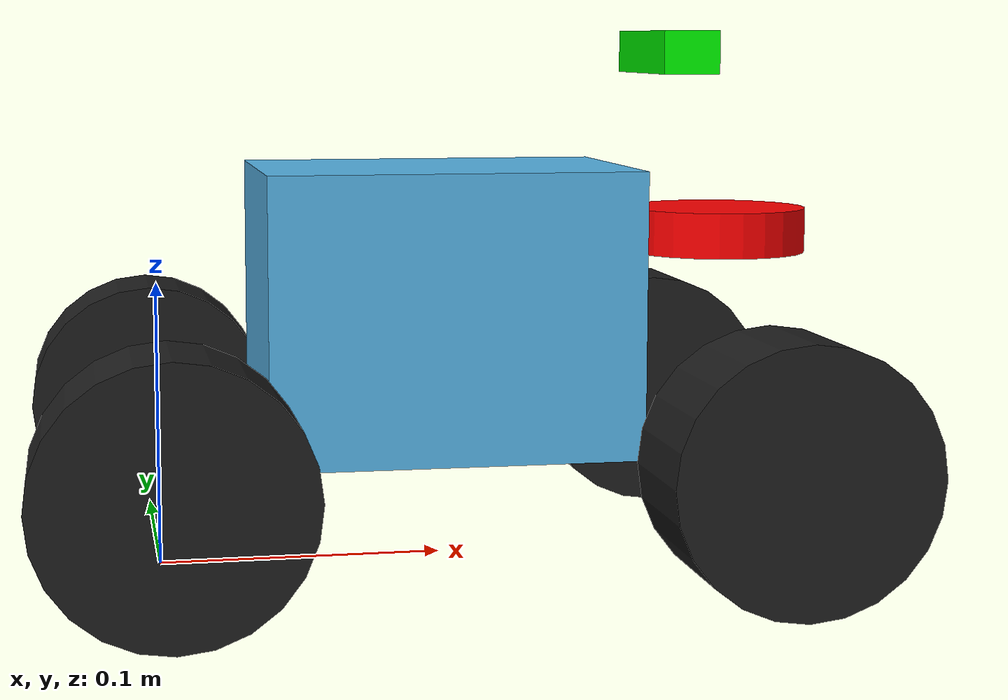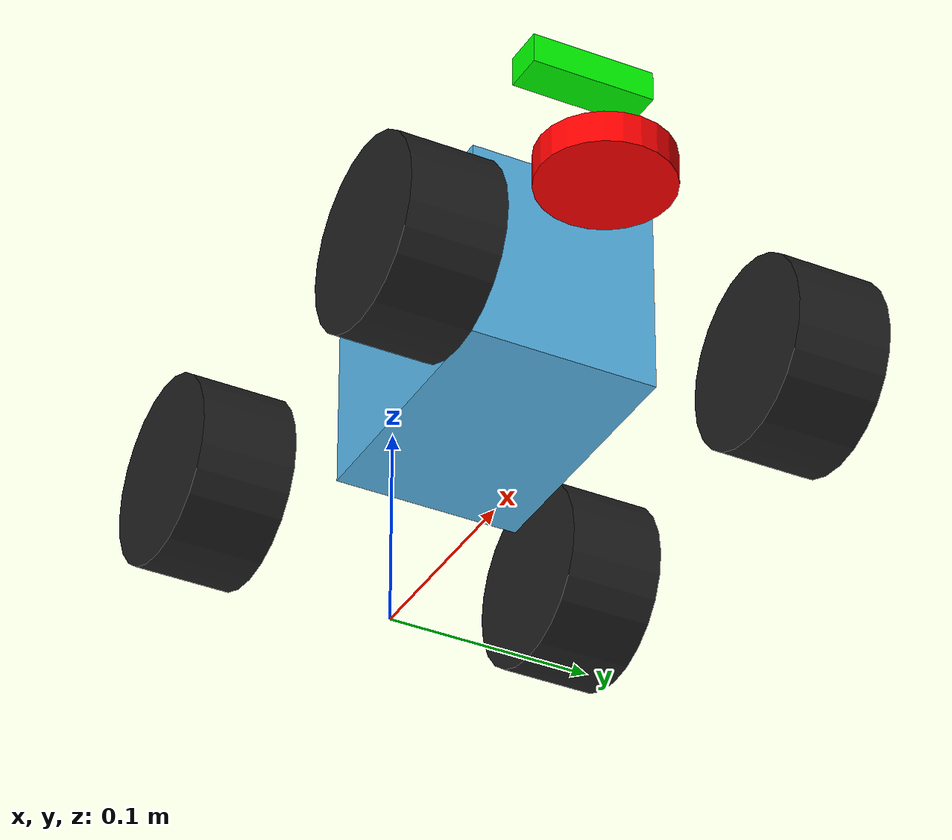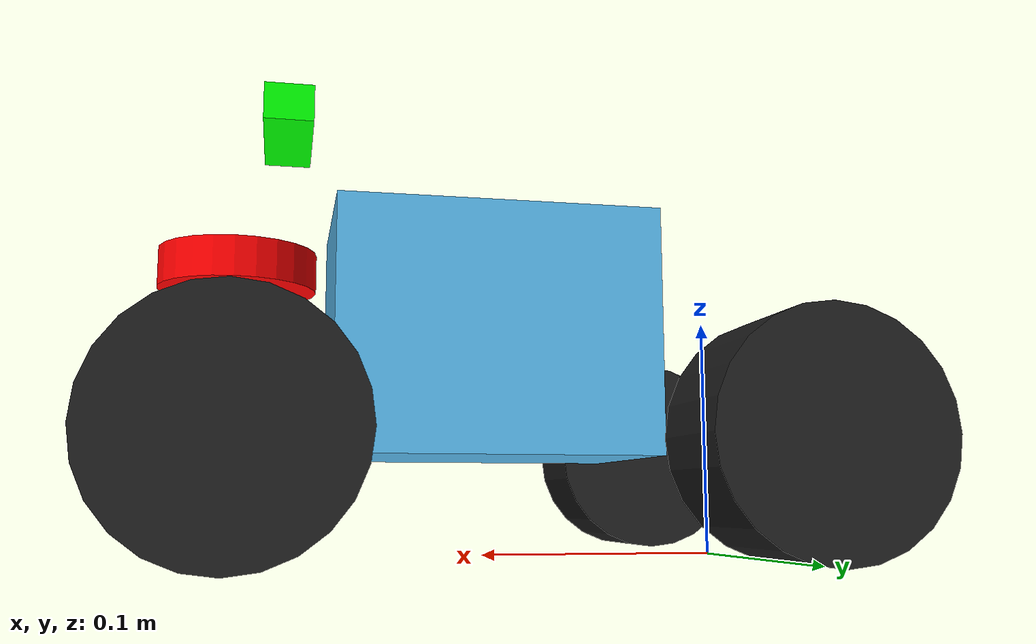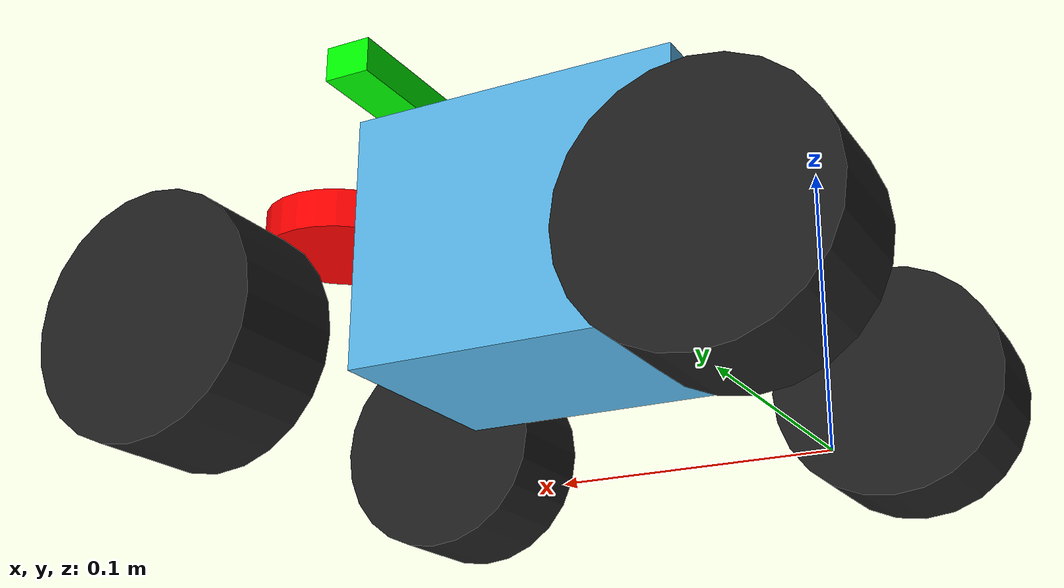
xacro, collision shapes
<?xml version="1.0"?>
<robot xmlns:xacro="http://www.ros.org/wiki/xacro" name="limo_ackerman">

    <xacro:arg name="robot_namespace" default="/" />
    <xacro:include filename="$(find limo_description)/urdf/limo_xacro.xacro" />
    <xacro:include filename="$(find limo_description)/urdf/gazebo_control.xacro" />
    <xacro:include filename="$(find limo_description)/urdf/inertial_macros.xacro" />

    <!-- Variables -->
    <xacro:property name="M_PI" value="3.14159265359"/>

    <!-- Vehicle Geometries -->
    <xacro:property name="base_x_size" value="0.2" />
    <xacro:property name="base_y_size" value="0.13" />
    <xacro:property name="base_z_size" value="0.1" />

    <xacro:property name="wheelbase" value="0.2"/>
    <xacro:property name="track" value="0.14"/>
    <xacro:property name="base_mass" value="3.0"/>
    <xacro:property name="wheel_vertical_offset" value="0.0" />
    <xacro:property name="wheel_length" value="0.045" />
    <xacro:property name="wheel_radius" value="0.045" />

    <!-- BASE FOOTPRINT -->

    <link name="base_footprint"/>

    <joint name="base_joint" type="fixed">
        <parent link="base_footprint"/>
        <child link="base_link"/>
        <origin xyz="0.0 0.0 0.045" rpy="0 0 0"/>
    </joint>

    <!-- BASE LINK -->

    <link name="base_link">
        <xacro:inertial_box mass="3" x="${base_x_size}" y="${base_y_size}" z="${base_z_size}">
            <origin xyz="0 0 0" rpy="0 0 0"/>
        </xacro:inertial_box>
        <visual>
            <origin xyz="${wheelbase/2} 0 -0.045" rpy="0 0 ${pi/2}" />
            <geometry>
                <mesh filename="file:///$(find limo_description)/meshes/limo_base.dae" />
            </geometry>
        </visual>
        <collision>
            <origin xyz="${wheelbase/2} 0 0.045" rpy="0 0 0" />
          <geometry>
              <box size="0.13 0.09 ${base_z_size}"/>
          </geometry>
        </collision>
    </link>

    <!-- SENSOR -->

    <xacro:limo_laser parent_prefix="base_link" frame_prefix="laser">
        <origin xyz="${0.103+wheelbase/2} 0 ${-0.034+0.15-0.045}" rpy="0 0 0"/>
    </xacro:limo_laser>

    <xacro:limo_depth_camera parent_prefix="base_link" frame_prefix="depth_camera">
        <origin xyz="${0.084+wheelbase/2} 0 ${0.03+0.15-0.045}" rpy="0 0 0"/>
    </xacro:limo_depth_camera>

    <xacro:limo_imu parent_prefix="base_link" frame_prefix="imu">
        <origin xyz="0 0 0" rpy="0 0 0"/>
    </xacro:limo_imu>

    <!-- WHEEL LINK -->

    <link name="rear_right_wheel_link">
        <xacro:inertial_cylinder mass="0.1" length="${wheel_length}" radius="${wheel_radius}">
            <origin xyz="0 0 ${-wheel_length/2}" rpy="0 0 0"/>
        </xacro:inertial_cylinder>
        <visual>
            <origin xyz="0 0 0" rpy="${-pi/2} 0 0" />
            <geometry>
                <mesh filename="file:///$(find limo_description)/meshes/limo_wheel.dae" />
            </geometry>
        </visual>
        <collision>
            <origin xyz="0 0 ${-wheel_length/2}" rpy="0 0 0" />
            <geometry>
                <cylinder length="${wheel_length}" radius="${wheel_radius}" />
            </geometry>
        </collision>
    </link>

    <link name="rear_left_wheel_link">
        <xacro:inertial_cylinder mass="0.1" length="${wheel_length}" radius="${wheel_radius}">
            <origin xyz="0 0 ${wheel_length/2}" rpy="0 0 0"/>
        </xacro:inertial_cylinder>
        <visual>
            <origin xyz="0 0 0" rpy="${pi/2} 0 0" />
            <geometry>
                <mesh filename="file:///$(find limo_description)/meshes/limo_wheel.dae" />
            </geometry>
        </visual>
        <collision>
            <origin xyz="0 0 ${wheel_length/2}" rpy="0 0 0" />
            <geometry>
                <cylinder length="${wheel_length}" radius="${wheel_radius}" />
            </geometry>
        </collision>
    </link>

    <link name="front_right_wheel_link">
        <xacro:inertial_cylinder mass="0.1" length="${wheel_length}" radius="${wheel_radius}">
            <origin xyz="0 0 ${-wheel_length/2}" rpy="0 0 0"/>
        </xacro:inertial_cylinder>
        <visual>
            <origin xyz="0 0 0" rpy="${-pi/2} 0 0" />
            <geometry>
                <mesh filename="file:///$(find limo_description)/meshes/limo_wheel.dae" />
            </geometry>
        </visual>
        <collision>
            <origin xyz="0 0 ${-wheel_length/2}" rpy="0 0 0" />
            <geometry>
                <cylinder length="${wheel_length}" radius="${wheel_radius}" />
            </geometry>
        </collision>
    </link>

    <link name="front_left_wheel_link">
        <xacro:inertial_cylinder mass="0.1" length="${wheel_length}" radius="${wheel_radius}">
            <origin xyz="0 0 ${wheel_length/2}" rpy="0 0 0"/>
        </xacro:inertial_cylinder>
        <visual>
            <origin xyz="0 0 0" rpy="${pi/2} 0 0" />
            <geometry>
                <mesh filename="file:///$(find limo_description)/meshes/limo_wheel.dae" />
            </geometry>
        </visual>
        <collision>
            <origin xyz="0 0 ${wheel_length/2}" rpy="0 0 0" />
            <geometry>
                <cylinder length="${wheel_length}" radius="${wheel_radius}" />
            </geometry>
        </collision>
    </link>

    <link name="right_steering_hinge">
        <xacro:inertial_flip_cylinder mass="0.1" length="${wheel_length}" radius="${wheel_radius}">
            <origin xyz="0 0 0" rpy="0 0 0"/>
        </xacro:inertial_flip_cylinder>
    </link>
    <link name="left_steering_hinge">
        <xacro:inertial_flip_cylinder mass="0.1" length="${wheel_length}" radius="${wheel_radius}">
            <origin xyz="0 0 0" rpy="0 0 0"/>
        </xacro:inertial_flip_cylinder>
    </link>

    <!-- WHEEL JOINT -->

    <joint name="rear_left_wheel" type="continuous">
        <origin xyz="0 ${track/2} ${wheel_vertical_offset}" rpy="${-pi/2} 0 0" />
        <parent link="base_link" />
        <child link="rear_left_wheel_link" />
        <axis xyz="0 0 1" />
        <limit
            effort="10.0"
            lower="-3.14159265359"
            upper="3.14159265359"
            velocity="20.0"
            />
    </joint>

    <joint name="rear_right_wheel" type="continuous">
        <origin xyz="0 ${-track/2} ${wheel_vertical_offset}" rpy="${-pi/2} 0 0" />
        <parent link="base_link" />
        <child link="rear_right_wheel_link" />
        <axis xyz="0 0 1" />
        <limit
            effort="10.0"
            lower="-3.14159265359"
            upper="3.14159265359"
            velocity="20.0"
            />
    </joint>

    <joint name="left_steering_hinge_wheel" type="revolute">
        <origin xyz="${wheelbase} ${track/2} ${wheel_vertical_offset}" rpy="0 0 0" />
        <parent link="base_link" />
        <child link="left_steering_hinge" />
        <axis xyz="0 0 1" />
        <limit
            effort="10.00"
            lower="-0.523598767"
            upper="0.523598767"
            velocity="10.00"/>
    </joint>

    <joint name="right_steering_hinge_wheel" type="revolute">
        <origin xyz="${wheelbase} ${-track/2} ${wheel_vertical_offset}" rpy="0 0 0" />
        <parent link="base_link" />
        <child link="right_steering_hinge" />
        <axis xyz="0 0 1" />
        <limit
            effort="10.00"
            lower="-0.523598767"
            upper="0.523598767"
            velocity="10.00"/>
    </joint>

    <joint name="front_left_wheel" type="continuous">
        <origin xyz="0 0 0" rpy="${-pi/2} 0 0" />
        <parent link="left_steering_hinge" />
        <child link="front_left_wheel_link" />
        <axis xyz="0 0 1" />
        <limit
            effort="10.0"
            lower="-3.14159265359"
            upper="3.14159265359"
            velocity="20.0"
            />
    </joint>

    <joint name="front_right_wheel" type="continuous">
        <origin xyz="0 0 0" rpy="${-pi/2} 0 0" />
        <parent link="right_steering_hinge" />
        <child link="front_right_wheel_link" />
        <axis xyz="0 0 1" />
        <limit
            effort="10.0"
            lower="-3.14159265359"
            upper="3.14159265359"
            velocity="20.0"
            />
    </joint>

</robot>

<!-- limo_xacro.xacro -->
<robot name="limo_xacro" xmlns:xacro="http://ros.org/wiki/xacro">
    <xacro:macro name="limo_wheel" params="parent_prefix wheel_prefix reflect *joint_pose">
        <link name="${wheel_prefix}_wheel_link">
            <inertial>
                <origin xyz="0 0 0" />
                <mass value="0.5" />
                <inertia ixx="0.01055" ixy="0" ixz="0" iyy="0.00075" iyz="0" izz="0.01055" />
            </inertial>
            <visual>
                <origin xyz="0 0 0" rpy="0 0 0" />
                <geometry>
                    <mesh filename="file:///$(find limo_description)/meshes/limo_wheel.dae" />
                </geometry>
            </visual>
            <collision>
              <origin xyz="0 ${wheel_length/2} 0" rpy="1.57 0 0" />
              <geometry>
                  <cylinder length="${wheel_length}" radius="${wheel_radius}" />
              </geometry>
            </collision>
        </link>

        <joint name="${wheel_prefix}_wheel" type="continuous">
            <parent link="${parent_prefix}"/>
            <child link="${wheel_prefix}_wheel_link"/>
            <xacro:insert_block name="joint_pose"/>
            <axis xyz="0 ${reflect*1} 0"/>
        </joint>
    </xacro:macro>

    <xacro:macro name="limo_laser" params="parent_prefix frame_prefix *joint_pose">
        <link name='${frame_prefix}_link'>
            <pose>0 0 0 0 0 0</pose>
            <inertial>
                <mass value="0.1"/>
                <origin xyz="0.0 0 0" rpy="0 0 0"/>
                <inertia
                    ixx="1e-6" ixy="0" ixz="0"
                    iyy="1e-6" iyz="0"
                    izz="1e-6"
                />
            </inertial>
            <visual name='laser_visual'>
                <origin xyz="0 0 0" rpy="0 0 0"/>
                <geometry>
                    <cylinder radius="0.02" length="0.01"/>
                </geometry>
                <material name="laser_material">
                    <color rgba="1 0 0 1"/> <!-- Red -->
                    <ambient>0.1 0.1 0.1 1</ambient>
                    <diffuse>0.1 0.1 0.2 1</diffuse>
                    <specular>0 0 0 0</specular>
                    <emissive>0 0 0 1</emissive>
                </material>
            </visual>
            <collision name='laser_collision'>
                <origin xyz="0 0 0" rpy="0 0 0"/>
                <geometry>
                    <cylinder radius="0.032" length="0.016"/>
                </geometry>
            </collision>
        </link>
        <joint type="fixed" name="laser_joint">
            <xacro:insert_block name="joint_pose"/>
            <child link="${frame_prefix}_link"/>
            <parent link="${parent_prefix}"/>
        </joint>
        <gazebo reference="${frame_prefix}_link">
            <material>Gazebo/Yellow</material>
        </gazebo>
    </xacro:macro>

    <xacro:macro name="limo_depth_camera" params="parent_prefix frame_prefix *joint_pose">
        <link name='${frame_prefix}_link'>
            <pose>0 0 0 0 0 0</pose>
            <inertial>
                <mass value="0.1"/>
                <origin xyz="0.0 0 0" rpy="0 0 0"/>
                <inertia
                    ixx="1e-6" ixy="0" ixz="0"
                    iyy="1e-6" iyz="0"
                    izz="1e-6"
                />
            </inertial>
            <visual name='depth_camera_visual'>
                <origin xyz="0 0 0" rpy="0 0 0"/>
                <geometry>
                    <box size="0.02 0.06 0.015"/>
                </geometry>
                <material name='depth_camera_material'>
                    <color rgba="0 1 0 1"/> <!-- Green -->
                    <ambient>0.1 0.1 0.1 1</ambient>
                    <diffuse>0.1 0.1 0.2 1</diffuse>
                    <specular>0 0 0 0</specular>
                    <emissive>0 0 0 1</emissive>
                </material>
            </visual>
            <collision name='depth_camera_collision'>
                <origin xyz="0 0 0" rpy="0 0 0"/>
                <geometry>
                    <box size="0.02 0.06 0.015"/>
                </geometry>
            </collision>
        </link>

        <joint type="fixed" name="depth_camera_joint">
            <xacro:insert_block name="joint_pose"/>
            <child link="${frame_prefix}_link"/>
            <parent link="${parent_prefix}"/>
        </joint>
        <link name="depth_link"></link>

        <joint name="${frame_prefix}_to_camera_joint" type="fixed">
            <origin xyz="0 0 0" rpy="${-M_PI/2} 0 ${-M_PI/2} "/>
            <parent link="${frame_prefix}_link"/>
            <child link="depth_link"/>
          </joint>

        <gazebo reference="${frame_prefix}_link">
            <material>Gazebo/Yellow</material>
        </gazebo>
    </xacro:macro>

    <xacro:macro name="limo_imu" params="parent_prefix frame_prefix  *joint_pose">
        <link name='${frame_prefix}_link'>
            <pose>0 0 0 0 0 0</pose>
            <inertial>
                <mass value="0.01"/>
                <origin xyz="0.0 0 0" rpy="0 0 0"/>
                <inertia
                    ixx="1e-7" ixy="0" ixz="0"
                    iyy="1e-7" iyz="0"
                    izz="1e-7"
                />
            </inertial>
            <visual name='imu_visual'>
                <origin xyz="0 0 0" rpy="0 0 0"/>
                <geometry>
                    <box size="0.001 0.001 0.001"/>
                </geometry>
                <material name='imu_material'>
                    <color rgba="0 0 1 1"/> <!-- Blue -->
                    <ambient>0.1 0.1 0.1 1</ambient>
                    <diffuse>0.1 0.1 0.2 1</diffuse>
                    <specular>0 0 0 0</specular>
                    <emissive>0 0 0 1</emissive>
                </material>
            </visual>
            <collision name='imu_collision'>
                <origin xyz="0 0 0" rpy="0 0 0"/>
                <geometry>
                    <box size="0.001 0.001 0.001"/>
                </geometry>
            </collision>
        </link>
        <joint type="fixed" name="imu_joint">
            <xacro:insert_block name="joint_pose"/>
            <child link="${frame_prefix}_link"/>
            <parent link="${parent_prefix}"/>
        </joint>
        <gazebo reference="${frame_prefix}_link">
            <material>Gazebo/Yellow</material>
        </gazebo>
    </xacro:macro>
</robot>

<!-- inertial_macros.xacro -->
<robot xmlns:xacro="http://www.ros.org/wiki/xacro" >

    <!-- Specify some standard inertial calculations https://en.wikipedia.org/wiki/List_of_moments_of_inertia -->
    <!-- These make use of xacro's mathematical functionality -->

    <xacro:macro name="inertial_sphere" params="mass radius *origin">
        <inertial>
            <xacro:insert_block name="origin"/>
            <mass value="${mass}" />
            <inertia ixx="${(2/5) * mass * (radius*radius)}" ixy="0.0" ixz="0.0"
                    iyy="${(2/5) * mass * (radius*radius)}" iyz="0.0"
                    izz="${(2/5) * mass * (radius*radius)}" />
        </inertial>
    </xacro:macro>

    <xacro:macro name="inertial_box" params="mass x y z *origin">
        <inertial>
            <xacro:insert_block name="origin"/>
            <mass value="${mass}" />
            <inertia ixx="${(1/12) * mass * (y*y+z*z)}" ixy="0.0" ixz="0.0"
                    iyy="${(1/12) * mass * (x*x+z*z)}" iyz="0.0"
                    izz="${(1/12) * mass * (x*x+y*y)}" />
        </inertial>
    </xacro:macro>

    <xacro:macro name="inertial_cylinder" params="mass length radius *origin">
        <inertial>
            <xacro:insert_block name="origin"/>
            <mass value="${mass}" />
            <inertia ixx="${(1/12) * mass * (3*radius*radius + length*length)}" ixy="0.0" ixz="0.0"
                    iyy="${(1/12) * mass * (3*radius*radius + length*length)}" iyz="0.0"
                    izz="${(1/2) * mass * (radius*radius)}" />
        </inertial>
    </xacro:macro>

    <xacro:macro name="inertial_flip_cylinder" params="mass length radius *origin">

        <inertial>
            <xacro:insert_block name="origin"/>
            <mass value="${mass}" />
            <inertia ixx="${(1/12) * mass * (3*radius*radius + length*length)}" ixy="0.0" ixz="0.0"
                    iyy="${(1/2) * mass * (radius*radius)}" iyz="0.0"
                    izz="${(1/12) * mass * (3*radius*radius + length*length)}" />
        </inertial>
    </xacro:macro>

</robot>
